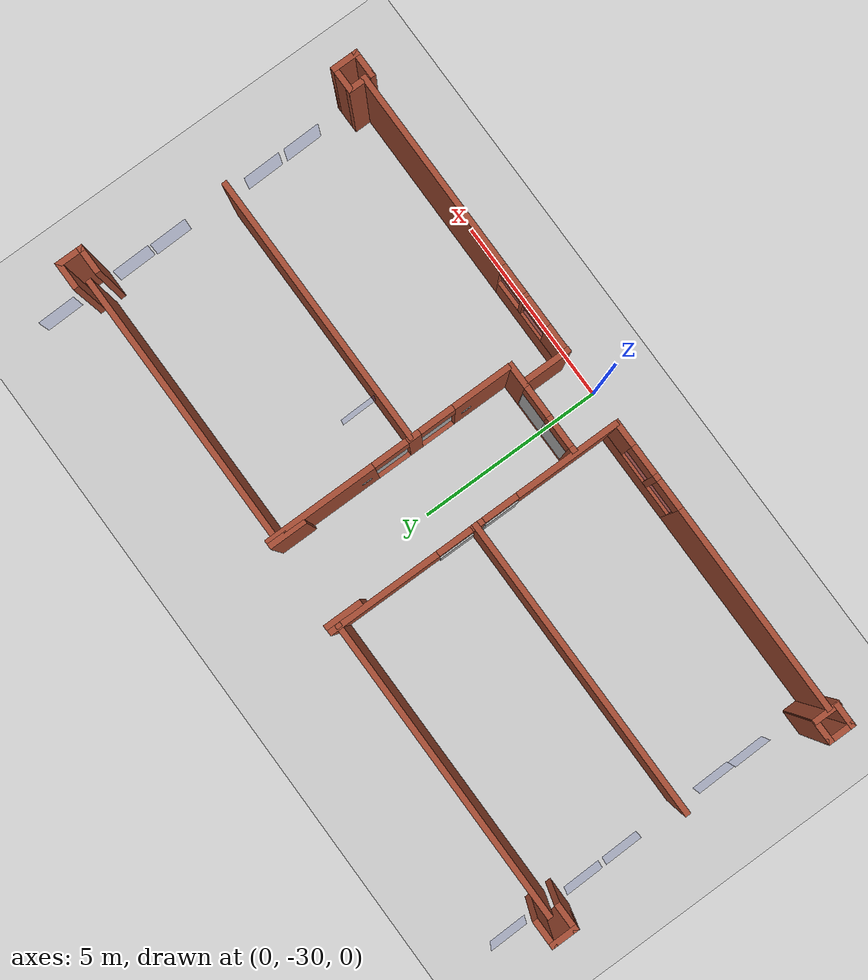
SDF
<sdf version="1.6">
 <world name="default">
  <model name="ground_plane">
   <static>1</static>
   <link name="link">
    <collision name="collision">
     <geometry><plane><normal>0 0 1</normal><size>100 100</size></plane></geometry>
     <surface><friction><ode><mu>100</mu><mu2>50</mu2></ode></friction></surface>
    </collision>
    <visual name="visual">
     <cast_shadows>0</cast_shadows>
     <geometry><plane><normal>0 0 1</normal><size>100 100</size></plane></geometry>
     <material>
      <script><uri>file://media/materials/scripts/gazebo.material</uri><name>Gazebo/Grey</name></script>
     </material>
    </visual>
   </link>
  </model>
  <model name="UNFRGS_INF_-_Predio_73">
   <pose>-0.02513 1.0401 -0.009 0 -0 0</pose>
   <link name="Wall_13">
    <collision name="Wall_13_Collision">
     <geometry><box><size>7.25 0.15 2.96</size></box></geometry>
     <pose>0 0 1.48 0 -0 0</pose>
    </collision>
    <visual name="Wall_13_Visual">
     <pose>0 0 1.48 0 -0 0</pose>
     <geometry><box><size>7.25 0.15 2.96</size></box></geometry>
     <material>
      <script><uri>file://media/materials/scripts/gazebo.material</uri><name>Gazebo/Bricks</name></script>
      <ambient>0.929412 1 0.760784 1</ambient>
     </material>
     <meta><layer>0</layer></meta>
    </visual>
    <pose>5.07487 -22.9292 0 0 -0 0</pose>
   </link>
   <link name="Wall_17">
    <pose>0.325867 -29.4752 0 0 -0 0</pose>
    <visual name="Wall_17_Visual_0">
     <pose>-1.17154 0 1.48 0 -0 0</pose>
     <geometry><box><size>0.156913 0.15 2.96</size></box></geometry>
     <material>
      <script><uri>file://media/materials/scripts/gazebo.material</uri><name>Gazebo/Bricks</name></script>
      <ambient>0.929412 1 0.760784 1</ambient>
     </material>
     <meta><layer>0</layer></meta>
    </visual>
    <collision name="Wall_17_Collision_0">
     <geometry><box><size>0.156913 0.15 2.96</size></box></geometry>
     <pose>-1.17154 0 1.48 0 -0 0</pose>
    </collision>
    <visual name="Wall_17_Visual_1">
     <pose>0.50454 0 0 0 -0 0</pose>
     <geometry><box><size>1.49092 0.15 0.001</size></box></geometry>
     <material>
      <script><uri>file://media/materials/scripts/gazebo.material</uri><name>Gazebo/Bricks</name></script>
      <ambient>0.929412 1 0.760784 1</ambient>
     </material>
     <meta><layer>0</layer></meta>
    </visual>
    <collision name="Wall_17_Collision_1">
     <geometry><box><size>1.49092 0.15 0.001</size></box></geometry>
     <pose>0.50454 0 0 0 -0 0</pose>
    </collision>
    <visual name="Wall_17_Visual_2">
     <pose>0.917098 0 1.48 0 -0 0</pose>
     <geometry><box><size>0.665804 0.15 2.96</size></box></geometry>
     <material>
      <script><uri>file://media/materials/scripts/gazebo.material</uri><name>Gazebo/Bricks</name></script>
      <ambient>0.929412 1 0.760784 1</ambient>
     </material>
     <meta><layer>0</layer></meta>
    </visual>
    <collision name="Wall_17_Collision_2">
     <geometry><box><size>0.665804 0.15 2.96</size></box></geometry>
     <pose>0.917098 0 1.48 0 -0 0</pose>
    </collision>
    <visual name="Wall_17_Visual_3">
     <pose>-0.667003 0 0 0 -0 0</pose>
     <geometry><box><size>0.852167 0.15 0.001</size></box></geometry>
     <material>
      <script><uri>file://media/materials/scripts/gazebo.material</uri><name>Gazebo/Bricks</name></script>
      <ambient>0.929412 1 0.760784 1</ambient>
     </material>
     <meta><layer>0</layer></meta>
    </visual>
    <collision name="Wall_17_Collision_3">
     <geometry><box><size>0.852167 0.15 0.001</size></box></geometry>
     <pose>-0.667003 0 0 0 -0 0</pose>
    </collision>
    <visual name="Wall_17_Visual_4">
     <pose>0.917098 0 1.48 0 -0 0</pose>
     <geometry><box><size>0.665804 0.15 2.96</size></box></geometry>
     <material>
      <script><uri>file://media/materials/scripts/gazebo.material</uri><name>Gazebo/Bricks</name></script>
      <ambient>0.929412 1 0.760784 1</ambient>
     </material>
     <meta><layer>0</layer></meta>
    </visual>
    <collision name="Wall_17_Collision_4">
     <geometry><box><size>0.665804 0.15 2.96</size></box></geometry>
     <pose>0.917098 0 1.48 0 -0 0</pose>
    </collision>
    <visual name="Wall_17_Visual_5">
     <pose>-0.668571 0 2.555 0 -0 0</pose>
     <geometry><box><size>0.849032 0.15 0.81</size></box></geometry>
     <material>
      <script><uri>file://media/materials/scripts/gazebo.material</uri><name>Gazebo/Bricks</name></script>
      <ambient>0.929412 1 0.760784 1</ambient>
     </material>
     <meta><layer>0</layer></meta>
    </visual>
    <collision name="Wall_17_Collision_5">
     <geometry><box><size>0.849032 0.15 0.81</size></box></geometry>
     <pose>-0.668571 0 2.555 0 -0 0</pose>
    </collision>
   </link>
   <link name="Wall_19">
    <collision name="Wall_19_Collision">
     <geometry><box><size>1.25 0.15 2.96</size></box></geometry>
     <pose>0 0 1.48 0 -0 0</pose>
    </collision>
    <visual name="Wall_19_Visual">
     <pose>0 0 1.48 0 -0 0</pose>
     <geometry><box><size>1.25 0.15 2.96</size></box></geometry>
     <material>
      <script><uri>file://media/materials/scripts/gazebo.material</uri><name>Gazebo/Bricks</name></script>
      <ambient>0.929412 1 0.760784 1</ambient>
     </material>
     <meta><layer>0</layer></meta>
    </visual>
    <pose>1.03187 -30.1412 0 0 0 -1.5708</pose>
   </link>
   <link name="Wall_2">
    <pose>-4.87813 -30.6212 0 0 -0 0</pose>
    <visual name="Wall_2_Visual_0">
     <pose>-1.22625 0 1.48 0 -0 0</pose>
     <geometry><box><size>5.54749 0.15 2.96</size></box></geometry>
     <material>
      <script><uri>file://media/materials/scripts/gazebo.material</uri><name>Gazebo/Bricks</name></script>
      <ambient>0.929412 1 0.760784 1</ambient>
     </material>
     <meta><layer>0</layer></meta>
    </visual>
    <collision name="Wall_2_Collision_0">
     <geometry><box><size>5.54749 0.15 2.96</size></box></geometry>
     <pose>-1.22625 0 1.48 0 -0 0</pose>
    </collision>
    <visual name="Wall_2_Visual_1">
     <pose>2.77375 0 0.55 0 -0 0</pose>
     <geometry><box><size>2.45251 0.15 1.11</size></box></geometry>
     <material>
      <script><uri>file://media/materials/scripts/gazebo.material</uri><name>Gazebo/Bricks</name></script>
      <ambient>0.929412 1 0.760784 1</ambient>
     </material>
     <meta><layer>0</layer></meta>
    </visual>
    <collision name="Wall_2_Collision_1">
     <geometry><box><size>2.45251 0.15 1.11</size></box></geometry>
     <pose>2.77375 0 0.55 0 -0 0</pose>
    </collision>
    <visual name="Wall_2_Visual_2">
     <pose>2.42582 0 2.03 0 -0 0</pose>
     <geometry><box><size>0.156656 0.15 1.86</size></box></geometry>
     <material>
      <script><uri>file://media/materials/scripts/gazebo.material</uri><name>Gazebo/Bricks</name></script>
      <ambient>0.929412 1 0.760784 1</ambient>
     </material>
     <meta><layer>0</layer></meta>
    </visual>
    <collision name="Wall_2_Collision_2">
     <geometry><box><size>0.156656 0.15 1.86</size></box></geometry>
     <pose>2.42582 0 2.03 0 -0 0</pose>
    </collision>
    <visual name="Wall_2_Visual_3">
     <pose>3.65207 0 2.03 0 -0 0</pose>
     <geometry><box><size>0.695852 0.15 1.86</size></box></geometry>
     <material>
      <script><uri>file://media/materials/scripts/gazebo.material</uri><name>Gazebo/Bricks</name></script>
      <ambient>0.929412 1 0.760784 1</ambient>
     </material>
     <meta><layer>0</layer></meta>
    </visual>
    <collision name="Wall_2_Collision_3">
     <geometry><box><size>0.695852 0.15 1.86</size></box></geometry>
     <pose>3.65207 0 2.03 0 -0 0</pose>
    </collision>
    <visual name="Wall_2_Visual_4">
     <pose>1.94749 0 2.53 0 -0 0</pose>
     <geometry><box><size>0.8 0.15 0.86</size></box></geometry>
     <material>
      <script><uri>file://media/materials/scripts/gazebo.material</uri><name>Gazebo/Bricks</name></script>
      <ambient>0.929412 1 0.760784 1</ambient>
     </material>
     <meta><layer>0</layer></meta>
    </visual>
    <collision name="Wall_2_Collision_4">
     <geometry><box><size>0.8 0.15 0.86</size></box></geometry>
     <pose>1.94749 0 2.53 0 -0 0</pose>
    </collision>
    <visual name="Wall_2_Visual_5">
     <pose>2.90415 0 2.53 0 -0 0</pose>
     <geometry><box><size>0.8 0.15 0.86</size></box></geometry>
     <material>
      <script><uri>file://media/materials/scripts/gazebo.material</uri><name>Gazebo/Bricks</name></script>
      <ambient>0.929412 1 0.760784 1</ambient>
     </material>
     <meta><layer>0</layer></meta>
    </visual>
    <collision name="Wall_2_Collision_5">
     <geometry><box><size>0.8 0.15 0.86</size></box></geometry>
     <pose>2.90415 0 2.53 0 -0 0</pose>
    </collision>
   </link>
   <link name="Wall_22">
    <pose>4.96787 -30.6847 0 0 -0 3.14041</pose>
    <visual name="Wall_22_Visual_0">
     <pose>-1.17753 0 1.48 0 -0 0</pose>
     <geometry><box><size>5.39494 0.15 2.96</size></box></geometry>
     <material>
      <script><uri>file://media/materials/scripts/gazebo.material</uri><name>Gazebo/Bricks</name></script>
      <ambient>0.929412 1 0.760784 1</ambient>
     </material>
     <meta><layer>0</layer></meta>
    </visual>
    <collision name="Wall_22_Collision_0">
     <geometry><box><size>5.39494 0.15 2.96</size></box></geometry>
     <pose>-1.17753 0 1.48 0 -0 0</pose>
    </collision>
    <visual name="Wall_22_Visual_1">
     <pose>2.69747 0 0.55 0 -0 0</pose>
     <geometry><box><size>2.35506 0.15 1.11</size></box></geometry>
     <material>
      <script><uri>file://media/materials/scripts/gazebo.material</uri><name>Gazebo/Bricks</name></script>
      <ambient>0.929412 1 0.760784 1</ambient>
     </material>
     <meta><layer>0</layer></meta>
    </visual>
    <collision name="Wall_22_Collision_1">
     <geometry><box><size>2.35506 0.15 1.11</size></box></geometry>
     <pose>2.69747 0 0.55 0 -0 0</pose>
    </collision>
    <visual name="Wall_22_Visual_2">
     <pose>2.37435 0 2.03 0 -0 0</pose>
     <geometry><box><size>0.108823 0.15 1.86</size></box></geometry>
     <material>
      <script><uri>file://media/materials/scripts/gazebo.material</uri><name>Gazebo/Bricks</name></script>
      <ambient>0.929412 1 0.760784 1</ambient>
     </material>
     <meta><layer>0</layer></meta>
    </visual>
    <collision name="Wall_22_Collision_2">
     <geometry><box><size>0.108823 0.15 1.86</size></box></geometry>
     <pose>2.37435 0 2.03 0 -0 0</pose>
    </collision>
    <visual name="Wall_22_Visual_3">
     <pose>3.55188 0 2.03 0 -0 0</pose>
     <geometry><box><size>0.646239 0.15 1.86</size></box></geometry>
     <material>
      <script><uri>file://media/materials/scripts/gazebo.material</uri><name>Gazebo/Bricks</name></script>
      <ambient>0.929412 1 0.760784 1</ambient>
     </material>
     <meta><layer>0</layer></meta>
    </visual>
    <collision name="Wall_22_Collision_3">
     <geometry><box><size>0.646239 0.15 1.86</size></box></geometry>
     <pose>3.55188 0 2.03 0 -0 0</pose>
    </collision>
    <visual name="Wall_22_Visual_4">
     <pose>1.91994 0 2.53 0 -0 0</pose>
     <geometry><box><size>0.8 0.15 0.86</size></box></geometry>
     <material>
      <script><uri>file://media/materials/scripts/gazebo.material</uri><name>Gazebo/Bricks</name></script>
      <ambient>0.929412 1 0.760784 1</ambient>
     </material>
     <meta><layer>0</layer></meta>
    </visual>
    <collision name="Wall_22_Collision_4">
     <geometry><box><size>0.8 0.15 0.86</size></box></geometry>
     <pose>1.91994 0 2.53 0 -0 0</pose>
    </collision>
    <visual name="Wall_22_Visual_5">
     <pose>2.82876 0 2.53 0 -0 0</pose>
     <geometry><box><size>0.8 0.15 0.86</size></box></geometry>
     <material>
      <script><uri>file://media/materials/scripts/gazebo.material</uri><name>Gazebo/Bricks</name></script>
      <ambient>0.929412 1 0.760784 1</ambient>
     </material>
     <meta><layer>0</layer></meta>
    </visual>
    <collision name="Wall_22_Collision_5">
     <geometry><box><size>0.8 0.15 0.86</size></box></geometry>
     <pose>2.82876 0 2.53 0 -0 0</pose>
    </collision>
   </link>
   <link name="Wall_233">
    <collision name="Wall_233_Collision">
     <geometry><box><size>1 0.15 2.96</size></box></geometry>
     <pose>0 0 1.48 0 -0 0</pose>
    </collision>
    <visual name="Wall_233_Visual">
     <pose>0 0 1.48 0 -0 0</pose>
     <geometry><box><size>1 0.15 2.96</size></box></geometry>
     <material>
      <script><uri>file://media/materials/scripts/gazebo.material</uri><name>Gazebo/Bricks</name></script>
      <ambient>0.929412 1 0.760784 1</ambient>
     </material>
     <meta><layer>0</layer></meta>
    </visual>
    <pose>1.41087 -23.1962 0 0 0 -1.5708</pose>
   </link>
   <link name="Wall_235">
    <collision name="Wall_235_Collision">
     <geometry><box><size>1 0.15 2.96</size></box></geometry>
     <pose>0 0 1.48 0 -0 0</pose>
    </collision>
    <visual name="Wall_235_Visual">
     <pose>0 0 1.48 0 -0 0</pose>
     <geometry><box><size>1 0.15 2.96</size></box></geometry>
     <material>
      <script><uri>file://media/materials/scripts/gazebo.material</uri><name>Gazebo/Bricks</name></script>
      <ambient>0.929412 1 0.760784 1</ambient>
     </material>
     <meta><layer>0</layer></meta>
    </visual>
    <pose>-0.799033 -23.1456 0 0 0 -1.5708</pose>
   </link>
   <link name="Wall_238">
    <pose>-0.940838 -26.6496 0 0 -0 1.5708</pose>
    <visual name="Wall_238_Visual_0">
     <pose>-2.60333 0 1.48 0 -0 0</pose>
     <geometry><box><size>2.79334 0.15 2.96</size></box></geometry>
     <material>
      <script><uri>file://media/materials/scripts/gazebo.material</uri><name>Gazebo/Bricks</name></script>
      <ambient>0.929412 1 0.760784 1</ambient>
     </material>
     <meta><layer>0</layer></meta>
    </visual>
    <collision name="Wall_238_Collision_0">
     <geometry><box><size>2.79334 0.15 2.96</size></box></geometry>
     <pose>-2.60333 0 1.48 0 -0 0</pose>
    </collision>
    <visual name="Wall_238_Visual_1">
     <pose>-0.101148 0 1.48 0 -0 0</pose>
     <geometry><box><size>0.331017 0.15 2.96</size></box></geometry>
     <material>
      <script><uri>file://media/materials/scripts/gazebo.material</uri><name>Gazebo/Bricks</name></script>
      <ambient>0.929412 1 0.760784 1</ambient>
     </material>
     <meta><layer>0</layer></meta>
    </visual>
    <collision name="Wall_238_Collision_1">
     <geometry><box><size>0.331017 0.15 2.96</size></box></geometry>
     <pose>-0.101148 0 1.48 0 -0 0</pose>
    </collision>
    <visual name="Wall_238_Visual_2">
     <pose>2.50218 0 1.48 0 -0 0</pose>
     <geometry><box><size>2.99564 0.15 2.96</size></box></geometry>
     <material>
      <script><uri>file://media/materials/scripts/gazebo.material</uri><name>Gazebo/Bricks</name></script>
      <ambient>0.929412 1 0.760784 1</ambient>
     </material>
     <meta><layer>0</layer></meta>
    </visual>
    <collision name="Wall_238_Collision_2">
     <geometry><box><size>2.99564 0.15 2.96</size></box></geometry>
     <pose>2.50218 0 1.48 0 -0 0</pose>
    </collision>
    <visual name="Wall_238_Visual_3">
     <pose>-0.736656 0 0 0 -0 0</pose>
     <geometry><box><size>0.94 0.15 0.001</size></box></geometry>
     <material>
      <script><uri>file://media/materials/scripts/gazebo.material</uri><name>Gazebo/Bricks</name></script>
      <ambient>0.929412 1 0.760784 1</ambient>
     </material>
     <meta><layer>0</layer></meta>
    </visual>
    <collision name="Wall_238_Collision_3">
     <geometry><box><size>0.94 0.15 0.001</size></box></geometry>
     <pose>-0.736656 0 0 0 -0 0</pose>
    </collision>
    <visual name="Wall_238_Visual_4">
     <pose>0.534361 0 0 0 -0 0</pose>
     <geometry><box><size>0.94 0.15 0.001</size></box></geometry>
     <material>
      <script><uri>file://media/materials/scripts/gazebo.material</uri><name>Gazebo/Bricks</name></script>
      <ambient>0.929412 1 0.760784 1</ambient>
     </material>
     <meta><layer>0</layer></meta>
    </visual>
    <collision name="Wall_238_Collision_4">
     <geometry><box><size>0.94 0.15 0.001</size></box></geometry>
     <pose>0.534361 0 0 0 -0 0</pose>
    </collision>
    <visual name="Wall_238_Visual_5">
     <pose>-0.736656 0 2.555 0 -0 0</pose>
     <geometry><box><size>0.94 0.15 0.81</size></box></geometry>
     <material>
      <script><uri>file://media/materials/scripts/gazebo.material</uri><name>Gazebo/Bricks</name></script>
      <ambient>0.929412 1 0.760784 1</ambient>
     </material>
     <meta><layer>0</layer></meta>
    </visual>
    <collision name="Wall_238_Collision_5">
     <geometry><box><size>0.94 0.15 0.81</size></box></geometry>
     <pose>-0.736656 0 2.555 0 -0 0</pose>
    </collision>
    <visual name="Wall_238_Visual_6">
     <pose>0.534361 0 2.555 0 -0 0</pose>
     <geometry><box><size>0.94 0.15 0.81</size></box></geometry>
     <material>
      <script><uri>file://media/materials/scripts/gazebo.material</uri><name>Gazebo/Bricks</name></script>
      <ambient>0.929412 1 0.760784 1</ambient>
     </material>
     <meta><layer>0</layer></meta>
    </visual>
    <collision name="Wall_238_Collision_6">
     <geometry><box><size>0.94 0.15 0.81</size></box></geometry>
     <pose>0.534361 0 2.555 0 -0 0</pose>
    </collision>
   </link>
   <link name="Wall_241">
    <pose>1.50787 -26.0742 0 0 -0 1.5708</pose>
    <visual name="Wall_241_Visual_0">
     <pose>-2.58734 0 1.48 0 -0 0</pose>
     <geometry><box><size>1.57533 0.15 2.96</size></box></geometry>
     <material>
      <script><uri>file://media/materials/scripts/gazebo.material</uri><name>Gazebo/Bricks</name></script>
      <ambient>0.929412 1 0.760784 1</ambient>
     </material>
     <meta><layer>0</layer></meta>
    </visual>
    <collision name="Wall_241_Collision_0">
     <geometry><box><size>1.57533 0.15 2.96</size></box></geometry>
     <pose>-2.58734 0 1.48 0 -0 0</pose>
    </collision>
    <visual name="Wall_241_Visual_1">
     <pose>-0.683929 0 1.48 0 -0 0</pose>
     <geometry><box><size>0.351485 0.15 2.96</size></box></geometry>
     <material>
      <script><uri>file://media/materials/scripts/gazebo.material</uri><name>Gazebo/Bricks</name></script>
      <ambient>0.929412 1 0.760784 1</ambient>
     </material>
     <meta><layer>0</layer></meta>
    </visual>
    <collision name="Wall_241_Collision_1">
     <geometry><box><size>0.351485 0.15 2.96</size></box></geometry>
     <pose>-0.683929 0 1.48 0 -0 0</pose>
    </collision>
    <visual name="Wall_241_Visual_2">
     <pose>1.90341 0 1.48 0 -0 0</pose>
     <geometry><box><size>2.94319 0.15 2.96</size></box></geometry>
     <material>
      <script><uri>file://media/materials/scripts/gazebo.material</uri><name>Gazebo/Bricks</name></script>
      <ambient>0.929412 1 0.760784 1</ambient>
     </material>
     <meta><layer>0</layer></meta>
    </visual>
    <collision name="Wall_241_Collision_2">
     <geometry><box><size>2.94319 0.15 2.96</size></box></geometry>
     <pose>1.90341 0 1.48 0 -0 0</pose>
    </collision>
    <visual name="Wall_241_Visual_3">
     <pose>-1.32967 0 0 0 -0 0</pose>
     <geometry><box><size>0.94 0.15 0.001</size></box></geometry>
     <material>
      <script><uri>file://media/materials/scripts/gazebo.material</uri><name>Gazebo/Bricks</name></script>
      <ambient>0.929412 1 0.760784 1</ambient>
     </material>
     <meta><layer>0</layer></meta>
    </visual>
    <collision name="Wall_241_Collision_3">
     <geometry><box><size>0.94 0.15 0.001</size></box></geometry>
     <pose>-1.32967 0 0 0 -0 0</pose>
    </collision>
    <visual name="Wall_241_Visual_4">
     <pose>-0.038187 0 0 0 -0 0</pose>
     <geometry><box><size>0.94 0.15 0.001</size></box></geometry>
     <material>
      <script><uri>file://media/materials/scripts/gazebo.material</uri><name>Gazebo/Bricks</name></script>
      <ambient>0.929412 1 0.760784 1</ambient>
     </material>
     <meta><layer>0</layer></meta>
    </visual>
    <collision name="Wall_241_Collision_4">
     <geometry><box><size>0.94 0.15 0.001</size></box></geometry>
     <pose>-0.038187 0 0 0 -0 0</pose>
    </collision>
    <visual name="Wall_241_Visual_5">
     <pose>-1.32967 0 2.555 0 -0 0</pose>
     <geometry><box><size>0.94 0.15 0.81</size></box></geometry>
     <material>
      <script><uri>file://media/materials/scripts/gazebo.material</uri><name>Gazebo/Bricks</name></script>
      <ambient>0.929412 1 0.760784 1</ambient>
     </material>
     <meta><layer>0</layer></meta>
    </visual>
    <collision name="Wall_241_Collision_5">
     <geometry><box><size>0.94 0.15 0.81</size></box></geometry>
     <pose>-1.32967 0 2.555 0 -0 0</pose>
    </collision>
    <visual name="Wall_241_Visual_6">
     <pose>-0.038187 0 2.555 0 -0 0</pose>
     <geometry><box><size>0.94 0.15 0.81</size></box></geometry>
     <material>
      <script><uri>file://media/materials/scripts/gazebo.material</uri><name>Gazebo/Bricks</name></script>
      <ambient>0.929412 1 0.760784 1</ambient>
     </material>
     <meta><layer>0</layer></meta>
    </visual>
    <collision name="Wall_241_Collision_6">
     <geometry><box><size>0.94 0.15 0.81</size></box></geometry>
     <pose>-0.038187 0 2.555 0 -0 0</pose>
    </collision>
   </link>
   <link name="Wall_243">
    <collision name="Wall_243_Collision">
     <geometry><box><size>8 0.15 2.96</size></box></geometry>
     <pose>0 0 1.48 0 -0 0</pose>
    </collision>
    <visual name="Wall_243_Visual">
     <pose>0 0 1.48 0 -0 0</pose>
     <geometry><box><size>8 0.15 2.96</size></box></geometry>
     <material>
      <script><uri>file://media/materials/scripts/gazebo.material</uri><name>Gazebo/Bricks</name></script>
      <ambient>0.929412 1 0.760784 1</ambient>
     </material>
     <meta><layer>0</layer></meta>
    </visual>
    <pose>-4.86313 -26.7072 0 0 -0 0</pose>
   </link>
   <link name="Wall_246">
    <collision name="Wall_246_Collision">
     <geometry><box><size>7.25 0.15 2.96</size></box></geometry>
     <pose>0 0 1.48 0 -0 0</pose>
    </collision>
    <visual name="Wall_246_Visual">
     <pose>0 0 1.48 0 -0 0</pose>
     <geometry><box><size>7.25 0.15 2.96</size></box></geometry>
     <material>
      <script><uri>file://media/materials/scripts/gazebo.material</uri><name>Gazebo/Bricks</name></script>
      <ambient>0.929412 1 0.760784 1</ambient>
     </material>
     <meta><layer>0</layer></meta>
    </visual>
    <pose>5.08587 -26.7072 0 0 -0 0</pose>
   </link>
   <link name="Wall_656">
    <collision name="Wall_656_Collision">
     <geometry><box><size>0.663799 0.15 2.96</size></box></geometry>
     <pose>0 0 1.48 0 -0 0</pose>
    </collision>
    <visual name="Wall_656_Visual">
     <pose>0 0 1.48 0 -0 0</pose>
     <geometry><box><size>0.663799 0.15 2.96</size></box></geometry>
     <material>
      <script><uri>file://media/materials/scripts/gazebo.material</uri><name>Gazebo/Bricks</name></script>
      <ambient>0.498039 0.498039 0.498039 1</ambient>
     </material>
     <meta><layer>0</layer></meta>
    </visual>
    <pose>-9.15123 -30.2152 0 0 -0 3.14159</pose>
   </link>
   <link name="Wall_657">
    <collision name="Wall_657_Collision">
     <geometry><box><size>0.75 0.15 2.96</size></box></geometry>
     <pose>0 0 1.48 0 -0 0</pose>
    </collision>
    <visual name="Wall_657_Visual">
     <pose>0 0 1.48 0 -0 0</pose>
     <geometry><box><size>0.75 0.15 2.96</size></box></geometry>
     <material>
      <script><uri>file://media/materials/scripts/gazebo.material</uri><name>Gazebo/Bricks</name></script>
      <ambient>0.498039 0.498039 0.498039 1</ambient>
     </material>
     <meta><layer>0</layer></meta>
    </visual>
    <pose>-9.40813 -30.5152 0 0 0 -1.5708</pose>
   </link>
   <link name="Wall_658">
    <collision name="Wall_658_Collision">
     <geometry><box><size>0.663799 0.15 2.96</size></box></geometry>
     <pose>0 0 1.48 0 -0 0</pose>
    </collision>
    <visual name="Wall_658_Visual">
     <pose>0 0 1.48 0 -0 0</pose>
     <geometry><box><size>0.663799 0.15 2.96</size></box></geometry>
     <material>
      <script><uri>file://media/materials/scripts/gazebo.material</uri><name>Gazebo/Bricks</name></script>
      <ambient>0.498039 0.498039 0.498039 1</ambient>
     </material>
     <meta><layer>0</layer></meta>
    </visual>
    <pose>-9.15123 -30.8152 0 0 -0 0</pose>
   </link>
   <link name="Wall_659">
    <collision name="Wall_659_Collision">
     <geometry><box><size>0.75 0.15 2.96</size></box></geometry>
     <pose>0 0 1.48 0 -0 0</pose>
    </collision>
    <visual name="Wall_659_Visual">
     <pose>0 0 1.48 0 -0 0</pose>
     <geometry><box><size>0.75 0.15 2.96</size></box></geometry>
     <material>
      <script><uri>file://media/materials/scripts/gazebo.material</uri><name>Gazebo/Bricks</name></script>
      <ambient>0.498039 0.498039 0.498039 1</ambient>
     </material>
     <meta><layer>0</layer></meta>
    </visual>
    <pose>-8.87278 -30.5368 0 0 -0 1.5708</pose>
   </link>
   <link name="Wall_661">
    <collision name="Wall_661_Collision">
     <geometry><box><size>0.75 0.15 2.96</size></box></geometry>
     <pose>0 0 1.48 0 -0 0</pose>
    </collision>
    <visual name="Wall_661_Visual">
     <pose>0 0 1.48 0 -0 0</pose>
     <geometry><box><size>0.75 0.15 2.96</size></box></geometry>
     <material>
      <script><uri>file://media/materials/scripts/gazebo.material</uri><name>Gazebo/Bricks</name></script>
      <ambient>0.498039 0.498039 0.498039 1</ambient>
     </material>
     <meta><layer>0</layer></meta>
    </visual>
    <pose>-9.07113 -22.6192 0 0 -0 3.14159</pose>
   </link>
   <link name="Wall_662">
    <collision name="Wall_662_Collision">
     <geometry><box><size>0.75 0.15 2.96</size></box></geometry>
     <pose>0 0 1.48 0 -0 0</pose>
    </collision>
    <visual name="Wall_662_Visual">
     <pose>0 0 1.48 0 -0 0</pose>
     <geometry><box><size>0.75 0.15 2.96</size></box></geometry>
     <material>
      <script><uri>file://media/materials/scripts/gazebo.material</uri><name>Gazebo/Bricks</name></script>
      <ambient>0.498039 0.498039 0.498039 1</ambient>
     </material>
     <meta><layer>0</layer></meta>
    </visual>
    <pose>-9.37113 -22.9192 0 0 0 -1.5708</pose>
   </link>
   <link name="Wall_663">
    <collision name="Wall_663_Collision">
     <geometry><box><size>0.75 0.15 2.96</size></box></geometry>
     <pose>0 0 1.48 0 -0 0</pose>
    </collision>
    <visual name="Wall_663_Visual">
     <pose>0 0 1.48 0 -0 0</pose>
     <geometry><box><size>0.75 0.15 2.96</size></box></geometry>
     <material>
      <script><uri>file://media/materials/scripts/gazebo.material</uri><name>Gazebo/Bricks</name></script>
      <ambient>0.498039 0.498039 0.498039 1</ambient>
     </material>
     <meta><layer>0</layer></meta>
    </visual>
    <pose>-9.07113 -23.2192 0 0 -0 0</pose>
   </link>
   <link name="Wall_667">
    <collision name="Wall_667_Collision">
     <geometry><box><size>0.75 0.15 2.96</size></box></geometry>
     <pose>0 0 1.48 0 -0 0</pose>
    </collision>
    <visual name="Wall_667_Visual">
     <pose>0 0 1.48 0 -0 0</pose>
     <geometry><box><size>0.75 0.15 2.96</size></box></geometry>
     <material>
      <script><uri>file://media/materials/scripts/gazebo.material</uri><name>Gazebo/Bricks</name></script>
      <ambient>0.498039 0.498039 0.498039 1</ambient>
     </material>
     <meta><layer>0</layer></meta>
    </visual>
    <pose>9.04987 -30.2652 0 0 -0 0</pose>
   </link>
   <link name="Wall_668">
    <collision name="Wall_668_Collision">
     <geometry><box><size>0.75 0.15 2.96</size></box></geometry>
     <pose>0 0 1.48 0 -0 0</pose>
    </collision>
    <visual name="Wall_668_Visual">
     <pose>0 0 1.48 0 -0 0</pose>
     <geometry><box><size>0.75 0.15 2.96</size></box></geometry>
     <material>
      <script><uri>file://media/materials/scripts/gazebo.material</uri><name>Gazebo/Bricks</name></script>
      <ambient>0.498039 0.498039 0.498039 1</ambient>
     </material>
     <meta><layer>0</layer></meta>
    </visual>
    <pose>9.34987 -30.5652 0 0 0 -1.5708</pose>
   </link>
   <link name="Wall_669">
    <collision name="Wall_669_Collision">
     <geometry><box><size>0.75 0.15 2.96</size></box></geometry>
     <pose>0 0 1.48 0 -0 0</pose>
    </collision>
    <visual name="Wall_669_Visual">
     <pose>0 0 1.48 0 -0 0</pose>
     <geometry><box><size>0.75 0.15 2.96</size></box></geometry>
     <material>
      <script><uri>file://media/materials/scripts/gazebo.material</uri><name>Gazebo/Bricks</name></script>
      <ambient>0.498039 0.498039 0.498039 1</ambient>
     </material>
     <meta><layer>0</layer></meta>
    </visual>
    <pose>9.04987 -30.8652 0 0 -0 3.14159</pose>
   </link>
   <link name="Wall_670">
    <collision name="Wall_670_Collision">
     <geometry><box><size>0.75 0.15 2.96</size></box></geometry>
     <pose>0 0 1.48 0 -0 0</pose>
    </collision>
    <visual name="Wall_670_Visual">
     <pose>0 0 1.48 0 -0 0</pose>
     <geometry><box><size>0.75 0.15 2.96</size></box></geometry>
     <material>
      <script><uri>file://media/materials/scripts/gazebo.material</uri><name>Gazebo/Bricks</name></script>
      <ambient>0.498039 0.498039 0.498039 1</ambient>
     </material>
     <meta><layer>0</layer></meta>
    </visual>
    <pose>8.74987 -30.5652 0 0 -0 1.5708</pose>
   </link>
   <link name="Wall_672">
    <collision name="Wall_672_Collision">
     <geometry><box><size>0.75 0.15 2.96</size></box></geometry>
     <pose>0 0 1.48 0 -0 0</pose>
    </collision>
    <visual name="Wall_672_Visual">
     <pose>0 0 1.48 0 -0 0</pose>
     <geometry><box><size>0.75 0.15 2.96</size></box></geometry>
     <material>
      <script><uri>file://media/materials/scripts/gazebo.material</uri><name>Gazebo/Bricks</name></script>
      <ambient>0.498039 0.498039 0.498039 1</ambient>
     </material>
     <meta><layer>0</layer></meta>
    </visual>
    <pose>9.07487 -22.6072 0 0 -0 0</pose>
   </link>
   <link name="Wall_673">
    <collision name="Wall_673_Collision">
     <geometry><box><size>0.75 0.15 2.96</size></box></geometry>
     <pose>0 0 1.48 0 -0 0</pose>
    </collision>
    <visual name="Wall_673_Visual">
     <pose>0 0 1.48 0 -0 0</pose>
     <geometry><box><size>0.75 0.15 2.96</size></box></geometry>
     <material>
      <script><uri>file://media/materials/scripts/gazebo.material</uri><name>Gazebo/Bricks</name></script>
      <ambient>0.498039 0.498039 0.498039 1</ambient>
     </material>
     <meta><layer>0</layer></meta>
    </visual>
    <pose>9.37487 -22.9072 0 0 0 -1.5708</pose>
   </link>
   <link name="Wall_674">
    <collision name="Wall_674_Collision">
     <geometry><box><size>0.75 0.15 2.96</size></box></geometry>
     <pose>0 0 1.48 0 -0 0</pose>
    </collision>
    <visual name="Wall_674_Visual">
     <pose>0 0 1.48 0 -0 0</pose>
     <geometry><box><size>0.75 0.15 2.96</size></box></geometry>
     <material>
      <script><uri>file://media/materials/scripts/gazebo.material</uri><name>Gazebo/Bricks</name></script>
      <ambient>0.498039 0.498039 0.498039 1</ambient>
     </material>
     <meta><layer>0</layer></meta>
    </visual>
    <pose>9.07487 -23.2072 0 0 -0 3.14159</pose>
   </link>
   <link name="Wall_9">
    <collision name="Wall_9_Collision">
     <geometry><box><size>8 0.15 2.96</size></box></geometry>
     <pose>0 0 1.48 0 -0 0</pose>
    </collision>
    <visual name="Wall_9_Visual">
     <pose>0 0 1.48 0 -0 0</pose>
     <geometry><box><size>8 0.15 2.96</size></box></geometry>
     <material>
      <script><uri>file://media/materials/scripts/gazebo.material</uri><name>Gazebo/Bricks</name></script>
      <ambient>0.929412 1 0.760784 1</ambient>
     </material>
     <meta><layer>0</layer></meta>
    </visual>
    <pose>-4.87313 -22.9222 0 0 -0 0</pose>
   </link>
   <static>1</static>
  </model>
  <model name="placa_249">
   <pose>1.39 -24.3 1.48209 0 -0 1.57</pose>
   <static>1</static>
   <link name="link">
    <collision name="collision"><geometry><box><size>0.268 0.001 0.268</size></box></geometry></collision>
    <visual name="visual">
     <geometry><box><size>0.268 0.001 0.268</size></box></geometry>
     <material>
      <script>
       <uri>model://Placa_249/Materials/Scripts</uri>
       <uri>model://Placa_249/Materials/Textures</uri>
       <name>TexturaPlaca_249/Image</name>
      </script>
     </material>
    </visual>
   </link>
  </model>
  <model name="placa_250">
   <pose>-0.88 -24.3 1.48209 0 -0 1.57</pose>
   <static>1</static>
   <link name="link">
    <collision name="collision"><geometry><box><size>0.268 0.001 0.268</size></box></geometry></collision>
    <visual name="visual">
     <geometry><box><size>0.268 0.001 0.268</size></box></geometry>
     <material>
      <script>
       <uri>model://Placa_250/Materials/Scripts</uri>
       <uri>model://Placa_250/Materials/Textures</uri>
       <name>TexturaPlaca_250/Image</name>
      </script>
     </material>
    </visual>
   </link>
  </model>
  <model name="placa_251">
   <pose>1.39 -27.15 1.48209 0 -0 1.57</pose>
   <static>1</static>
   <link name="link">
    <collision name="collision"><geometry><box><size>0.268 0.001 0.268</size></box></geometry></collision>
    <visual name="visual">
     <geometry><box><size>0.268 0.001 0.268</size></box></geometry>
     <material>
      <script>
       <uri>model://Placa_251/Materials/Scripts</uri>
       <uri>model://Placa_251/Materials/Textures</uri>
       <name>TexturaPlaca_251/Image</name>
      </script>
     </material>
    </visual>
   </link>
  </model>
  <model name="placa_252">
   <pose>-0.88 -27.06 1.48209 0 -0 1.57</pose>
   <static>1</static>
   <link name="link">
    <collision name="collision"><geometry><box><size>0.268 0.001 0.268</size></box></geometry></collision>
    <visual name="visual">
     <geometry><box><size>0.268 0.001 0.268</size></box></geometry>
     <material>
      <script>
       <uri>model://Placa_252/Materials/Scripts</uri>
       <uri>model://Placa_252/Materials/Textures</uri>
       <name>TexturaPlaca_252/Image</name>
      </script>
     </material>
    </visual>
   </link>
  </model>
  <model name="PortaInternaDireita_6">
   <pose>-1.06 -25.08 1.075 0 -0 1.57</pose>
   <static>1</static>
   <link name="link">
    <collision name="collision"><geometry><box><size>2.15 3.5 0.94</size></box></geometry></collision>
    <visual name="visual">
     <geometry><box><size>0.94 0.035 2.15</size></box></geometry>
     <material>
      <script>
       <uri>model://PortaInternaDireita/materials/scripts</uri>
       <uri>model://PortaInternaDireita/materials/textures</uri>
       <name>TexturaPortaInternaDireita/Image</name>
      </script>
     </material>
    </visual>
   </link>
  </model>
  <model name="PortaInternaEsquerda_10">
   <pose>-1.06 -26.355 1.075 0 -0 1.57</pose>
   <static>1</static>
   <link name="link">
    <collision name="collision"><geometry><box><size>2.15 3.5 0.94</size></box></geometry></collision>
    <visual name="visual">
     <geometry><box><size>0.94 0.035 2.15</size></box></geometry>
     <material>
      <script>
       <uri>model://PortaInternaEsquerda/materials/scripts</uri>
       <uri>model://PortaInternaEsquerda/materials/textures</uri>
       <name>TexturaPortaInternaEsquerda/Image</name>
      </script>
     </material>
    </visual>
   </link>
  </model>
  <model name="PortaInternaDireita_7">
   <pose>1.54 -26.36 1.075 0 -0 1.57</pose>
   <static>1</static>
   <link name="link">
    <collision name="collision"><geometry><box><size>2.15 3.5 0.94</size></box></geometry></collision>
    <visual name="visual">
     <geometry><box><size>0.94 0.035 2.15</size></box></geometry>
     <material>
      <script>
       <uri>model://PortaInternaDireita/materials/scripts</uri>
       <uri>model://PortaInternaDireita/materials/textures</uri>
       <name>TexturaPortaInternaDireita/Image</name>
      </script>
     </material>
    </visual>
   </link>
  </model>
  <model name="PortaInternaEsquerda_11">
   <pose>1.54 -25.06 1.075 0 -0 1.57</pose>
   <static>1</static>
   <link name="link">
    <collision name="collision"><geometry><box><size>2.15 3.5 0.94</size></box></geometry></collision>
    <visual name="visual">
     <geometry><box><size>0.94 0.035 2.15</size></box></geometry>
     <material>
      <script>
       <uri>model://PortaInternaEsquerda/materials/scripts</uri>
       <uri>model://PortaInternaEsquerda/materials/textures</uri>
       <name>TexturaPortaInternaEsquerda/Image</name>
      </script>
     </material>
    </visual>
   </link>
  </model>
  <model name="fatia_parede_0">
   <pose>0.456317 -28.4366 1.30062 0 -0 0</pose>
   <link name="Wall_2">
    <collision name="Wall_2_Collision">
     <geometry><box><size>0.9 0.15 0.8</size></box></geometry>
     <pose>0 0 1.25 0 -0 0</pose>
    </collision>
    <visual name="Wall_2_Visual">
     <pose>0 0 1.25 0 -0 0</pose>
     <geometry><box><size>0.9 0.15 0.8</size></box></geometry>
     <material>
      <script><uri>file://media/materials/scripts/gazebo.material</uri><name>Gazebo/Bricks</name></script>
      <ambient>0.929412 1 0.760784 1</ambient>
     </material>
     <meta><layer>0</layer></meta>
    </visual>
    <pose>0 0 0 0 -0 3.14159</pose>
   </link>
   <static>1</static>
  </model>
  <model name="PortaExternaEsquerda">
   <pose>-0.377664 -28.4005 1.09603 0 -0 0</pose>
   <static>1</static>
   <link name="link">
    <collision name="collision"><geometry><box><size>2.15 3.5 0.85</size></box></geometry></collision>
    <visual name="visual">
     <geometry><box><size>0.85 0.035 2.15</size></box></geometry>
     <material>
      <script>
       <uri>model://PortaExternaEsquerda/materials/scripts</uri>
       <uri>model://PortaExternaEsquerda/materials/textures</uri>
       <name>TexturaPortaExternaEsquerda/Image</name>
      </script>
     </material>
    </visual>
   </link>
  </model>
  <model name="PortaExternaEsquerda_0">
   <pose>0.455621 -28.401 1.09158 0 -0 0</pose>
   <static>1</static>
   <link name="link">
    <collision name="collision"><geometry><box><size>2.15 3.5 0.85</size></box></geometry></collision>
    <visual name="visual">
     <geometry><box><size>0.85 0.035 2.15</size></box></geometry>
     <material>
      <script>
       <uri>model://PortaExternaDireita/materials/scripts</uri>
       <uri>model://PortaExternaDireita/materials/textures</uri>
       <name>TexturaPortaExternaDireita/Image</name>
      </script>
     </material>
    </visual>
   </link>
  </model>
  <model name="vidro_3">
   <pose>-3.01532 -29.5924 0.347307 0 -0 0</pose>
   <link name="Wall_2">
    <collision name="Wall_2_Collision">
     <geometry><box><size>1 0.001 1</size></box></geometry>
     <pose>0 0 1.25 0 -0 0</pose>
    </collision>
    <visual name="Wall_2_Visual">
     <pose>0 0 1.25 0 -0 0</pose>
     <transparency>0.8</transparency>
     <geometry><box><size>1 0.001 1</size></box></geometry>
     <material>
      <script><uri>file://media/materials/scripts/gazebo.material</uri><name>Gazebo/BlueTransparent</name></script>
      <ambient>0.1 0.1 0.1 0.1</ambient>
     </material>
     <meta><layer>0</layer></meta>
    </visual>
    <pose>0 0 0 0 -0 3.14159</pose>
   </link>
   <static>1</static>
  </model>
  <model name="vidro_4">
   <pose>-2.0095 -29.583 0.355129 0 -0 0</pose>
   <link name="Wall_2">
    <collision name="Wall_2_Collision">
     <geometry><box><size>1 0.001 1</size></box></geometry>
     <pose>0 0 1.25 0 -0 0</pose>
    </collision>
    <visual name="Wall_2_Visual">
     <pose>0 0 1.25 0 -0 0</pose>
     <transparency>0.8</transparency>
     <geometry><box><size>1 0.001 1</size></box></geometry>
     <material>
      <script><uri>file://media/materials/scripts/gazebo.material</uri><name>Gazebo/BlueTransparent</name></script>
      <ambient>0.1 0.1 0.1 0.1</ambient>
     </material>
     <meta><layer>0</layer></meta>
    </visual>
    <pose>0 0 0 0 -0 3.14159</pose>
   </link>
   <static>1</static>
  </model>
  <model name="vidro_5">
   <pose>2.07556 -29.6478 0.337492 0 -0 0</pose>
   <link name="Wall_2">
    <collision name="Wall_2_Collision">
     <geometry><box><size>1 0.001 1</size></box></geometry>
     <pose>0 0 1.25 0 -0 0</pose>
    </collision>
    <visual name="Wall_2_Visual">
     <pose>0 0 1.25 0 -0 0</pose>
     <transparency>0.8</transparency>
     <geometry><box><size>1 0.001 1</size></box></geometry>
     <material>
      <script><uri>file://media/materials/scripts/gazebo.material</uri><name>Gazebo/BlueTransparent</name></script>
      <ambient>0.1 0.1 0.1 0.1</ambient>
     </material>
     <meta><layer>0</layer></meta>
    </visual>
    <pose>0 0 0 0 -0 3.14159</pose>
   </link>
   <static>1</static>
  </model>
  <model name="vidro_6">
   <pose>3.01924 -29.6774 0.354626 0 -0 0</pose>
   <link name="Wall_2">
    <collision name="Wall_2_Collision">
     <geometry><box><size>1 0.001 1</size></box></geometry>
     <pose>0 0 1.25 0 -0 0</pose>
    </collision>
    <visual name="Wall_2_Visual">
     <pose>0 0 1.25 0 -0 0</pose>
     <transparency>0.8</transparency>
     <geometry><box><size>1 0.001 1</size></box></geometry>
     <material>
      <script><uri>file://media/materials/scripts/gazebo.material</uri><name>Gazebo/BlueTransparent</name></script>
      <ambient>0.1 0.1 0.1 0.1</ambient>
     </material>
     <meta><layer>0</layer></meta>
    </visual>
    <pose>0 0 0 0 -0 3.14159</pose>
   </link>
   <static>1</static>
  </model>
  <model name="vidro_7">
   <pose>8.7488 -27.769 0.368409 0 0 -1.55</pose>
   <link name="Wall_2">
    <collision name="Wall_2_Collision">
     <geometry><box><size>1 0.001 1</size></box></geometry>
     <pose>0 0 1.25 0 -0 0</pose>
    </collision>
    <visual name="Wall_2_Visual">
     <pose>0 0 1.25 0 -0 0</pose>
     <transparency>0.8</transparency>
     <geometry><box><size>1 0.001 1</size></box></geometry>
     <material>
      <script><uri>file://media/materials/scripts/gazebo.material</uri><name>Gazebo/BlueTransparent</name></script>
      <ambient>0.1 0.1 0.1 0.1</ambient>
     </material>
     <meta><layer>0</layer></meta>
    </visual>
    <pose>0 0 0 0 -0 3.14159</pose>
   </link>
   <static>1</static>
  </model>
  <model name="vidro_8">
   <pose>8.74696 -26.6359 0.326379 0 0 -1.55</pose>
   <link name="Wall_2">
    <collision name="Wall_2_Collision">
     <geometry><box><size>1 0.001 1</size></box></geometry>
     <pose>0 0 1.25 0 -0 0</pose>
    </collision>
    <visual name="Wall_2_Visual">
     <pose>0 0 1.25 0 -0 0</pose>
     <transparency>0.8</transparency>
     <geometry><box><size>1 0.001 1</size></box></geometry>
     <material>
      <script><uri>file://media/materials/scripts/gazebo.material</uri><name>Gazebo/BlueTransparent</name></script>
      <ambient>0.1 0.1 0.1 0.1</ambient>
     </material>
     <meta><layer>0</layer></meta>
    </visual>
    <pose>0 0 0 0 -0 3.14159</pose>
   </link>
   <static>1</static>
  </model>
  <model name="vidro_9">
   <pose>8.75431 -23.9716 0.346587 0 0 -1.55</pose>
   <link name="Wall_2">
    <collision name="Wall_2_Collision">
     <geometry><box><size>1 0.001 1</size></box></geometry>
     <pose>0 0 1.25 0 -0 0</pose>
    </collision>
    <visual name="Wall_2_Visual">
     <pose>0 0 1.25 0 -0 0</pose>
     <transparency>0.8</transparency>
     <geometry><box><size>1 0.001 1</size></box></geometry>
     <material>
      <script><uri>file://media/materials/scripts/gazebo.material</uri><name>Gazebo/BlueTransparent</name></script>
      <ambient>0.1 0.1 0.1 0.1</ambient>
     </material>
     <meta><layer>0</layer></meta>
    </visual>
    <pose>0 0 0 0 -0 3.14159</pose>
   </link>
   <static>1</static>
  </model>
  <model name="vidro_10">
   <pose>8.7578 -22.9163 0.343067 0 0 -1.55</pose>
   <link name="Wall_2">
    <collision name="Wall_2_Collision">
     <geometry><box><size>1 0.001 1</size></box></geometry>
     <pose>0 0 1.25 0 -0 0</pose>
    </collision>
    <visual name="Wall_2_Visual">
     <pose>0 0 1.25 0 -0 0</pose>
     <transparency>0.8</transparency>
     <geometry><box><size>1 0.001 1</size></box></geometry>
     <material>
      <script><uri>file://media/materials/scripts/gazebo.material</uri><name>Gazebo/BlueTransparent</name></script>
      <ambient>0.1 0.1 0.1 0.1</ambient>
     </material>
     <meta><layer>0</layer></meta>
    </visual>
    <pose>0 0 0 0 -0 3.14159</pose>
   </link>
   <static>1</static>
  </model>
  <model name="vidro_11">
   <pose>8.78816 -20.8356 0.352308 0 0 -1.55</pose>
   <link name="Wall_2">
    <collision name="Wall_2_Collision">
     <geometry><box><size>1 0.001 1</size></box></geometry>
     <pose>0 0 1.25 0 -0 0</pose>
    </collision>
    <visual name="Wall_2_Visual">
     <pose>0 0 1.25 0 -0 0</pose>
     <transparency>0.8</transparency>
     <geometry><box><size>1 0.001 1</size></box></geometry>
     <material>
      <script><uri>file://media/materials/scripts/gazebo.material</uri><name>Gazebo/BlueTransparent</name></script>
      <ambient>0.1 0.1 0.1 0.1</ambient>
     </material>
     <meta><layer>0</layer></meta>
    </visual>
    <pose>0 0 0 0 -0 3.14159</pose>
   </link>
   <static>1</static>
  </model>
  <model name="vidro_82">
   <pose>-8.85122 -20.8211 0.367798 0 0 -1.55</pose>
   <link name="Wall_2">
    <collision name="Wall_2_Collision">
     <geometry><box><size>1 0.001 1</size></box></geometry>
     <pose>0 0 1.25 0 -0 0</pose>
    </collision>
    <visual name="Wall_2_Visual">
     <pose>0 0 1.25 0 -0 0</pose>
     <transparency>0.8</transparency>
     <geometry><box><size>1 0.001 1</size></box></geometry>
     <material>
      <script><uri>file://media/materials/scripts/gazebo.material</uri><name>Gazebo/BlueTransparent</name></script>
      <ambient>0.1 0.1 0.1 0.1</ambient>
     </material>
     <meta><layer>0</layer></meta>
    </visual>
    <pose>0 0 0 0 -0 3.14159</pose>
   </link>
   <static>1</static>
  </model>
  <model name="vidro_83">
   <pose>-8.85451 -22.9412 0.387691 0 0 -1.55</pose>
   <link name="Wall_2">
    <collision name="Wall_2_Collision">
     <geometry><box><size>1 0.001 1</size></box></geometry>
     <pose>0 0 1.25 0 -0 0</pose>
    </collision>
    <visual name="Wall_2_Visual">
     <pose>0 0 1.25 0 -0 0</pose>
     <transparency>0.8</transparency>
     <geometry><box><size>1 0.001 1</size></box></geometry>
     <material>
      <script><uri>file://media/materials/scripts/gazebo.material</uri><name>Gazebo/BlueTransparent</name></script>
      <ambient>0.1 0.1 0.1 0.1</ambient>
     </material>
     <meta><layer>0</layer></meta>
    </visual>
    <pose>0 0 0 0 -0 3.14159</pose>
   </link>
   <static>1</static>
  </model>
  <model name="vidro_84">
   <pose>-8.83743 -24.052 0.353597 0 0 -1.55</pose>
   <link name="Wall_2">
    <collision name="Wall_2_Collision">
     <geometry><box><size>1 0.001 1</size></box></geometry>
     <pose>0 0 1.25 0 -0 0</pose>
    </collision>
    <visual name="Wall_2_Visual">
     <pose>0 0 1.25 0 -0 0</pose>
     <transparency>0.8</transparency>
     <geometry><box><size>1 0.001 1</size></box></geometry>
     <material>
      <script><uri>file://media/materials/scripts/gazebo.material</uri><name>Gazebo/BlueTransparent</name></script>
      <ambient>0.1 0.1 0.1 0.1</ambient>
     </material>
     <meta><layer>0</layer></meta>
    </visual>
    <pose>0 0 0 0 -0 3.14159</pose>
   </link>
   <static>1</static>
  </model>
  <model name="vidro_85">
   <pose>-8.80376 -26.7058 0.357997 0 0 -1.55</pose>
   <link name="Wall_2">
    <collision name="Wall_2_Collision">
     <geometry><box><size>1 0.001 1</size></box></geometry>
     <pose>0 0 1.25 0 -0 0</pose>
    </collision>
    <visual name="Wall_2_Visual">
     <pose>0 0 1.25 0 -0 0</pose>
     <transparency>0.8</transparency>
     <geometry><box><size>1 0.001 1</size></box></geometry>
     <material>
      <script><uri>file://media/materials/scripts/gazebo.material</uri><name>Gazebo/BlueTransparent</name></script>
      <ambient>0.1 0.1 0.1 0.1</ambient>
     </material>
     <meta><layer>0</layer></meta>
    </visual>
    <pose>0 0 0 0 -0 3.14159</pose>
   </link>
   <static>1</static>
  </model>
  <model name="vidro_86">
   <pose>-8.81259 -27.7159 0.350247 0 0 -1.55</pose>
   <link name="Wall_2">
    <collision name="Wall_2_Collision">
     <geometry><box><size>1 0.001 1</size></box></geometry>
     <pose>0 0 1.25 0 -0 0</pose>
    </collision>
    <visual name="Wall_2_Visual">
     <pose>0 0 1.25 0 -0 0</pose>
     <transparency>0.8</transparency>
     <geometry><box><size>1 0.001 1</size></box></geometry>
     <material>
      <script><uri>file://media/materials/scripts/gazebo.material</uri><name>Gazebo/BlueTransparent</name></script>
      <ambient>0.1 0.1 0.1 0.1</ambient>
     </material>
     <meta><layer>0</layer></meta>
    </visual>
    <pose>0 0 0 0 -0 3.14159</pose>
   </link>
   <static>1</static>
  </model>
  <model name="vidro_76_clone_3">
   <pose>2.85455 -25.1356 0.345445 0 0 -1.55</pose>
   <link name="Wall_2">
    <collision name="Wall_2_Collision">
     <geometry><box><size>1 0.001 1</size></box></geometry>
     <pose>0 0 1.25 0 -0 0</pose>
    </collision>
    <visual name="Wall_2_Visual">
     <pose>0 0 1.25 0 -0 0</pose>
     <transparency>0.8</transparency>
     <geometry><box><size>1 0.001 1</size></box></geometry>
     <material>
      <script><uri>file://media/materials/scripts/gazebo.material</uri><name>Gazebo/BlueTransparent</name></script>
      <ambient>0.1 0.1 0.1 0.1</ambient>
     </material>
     <meta><layer>0</layer></meta>
    </visual>
    <pose>0 0 0 0 -0 3.14159</pose>
   </link>
   <static>1</static>
  </model>
 </world>
</sdf>
